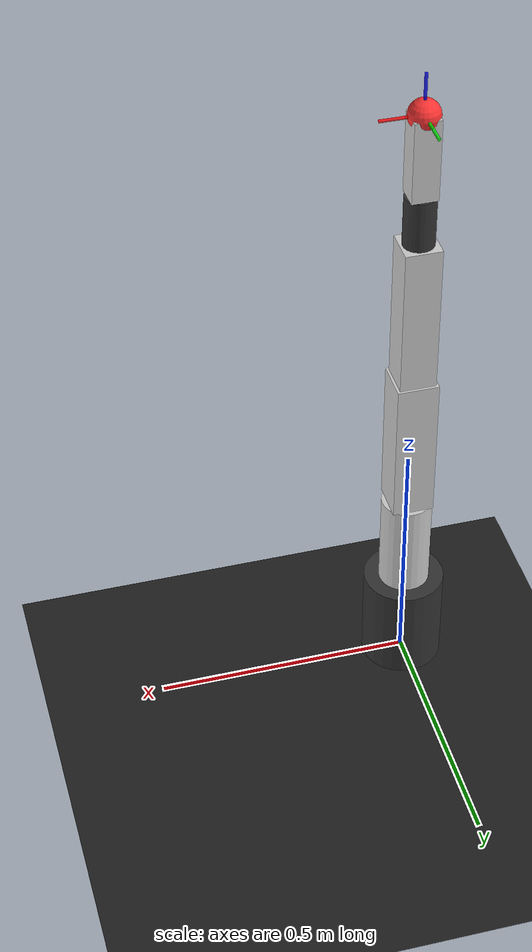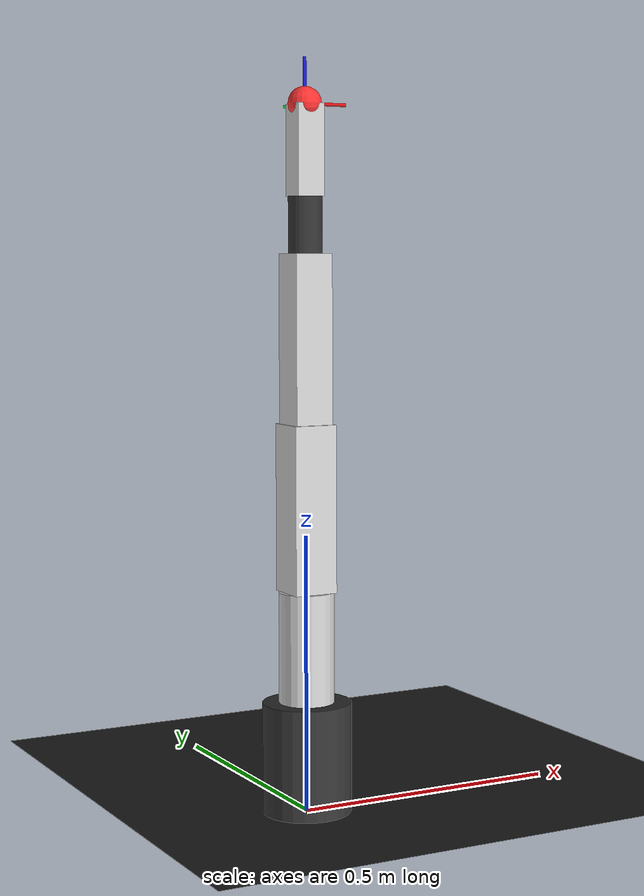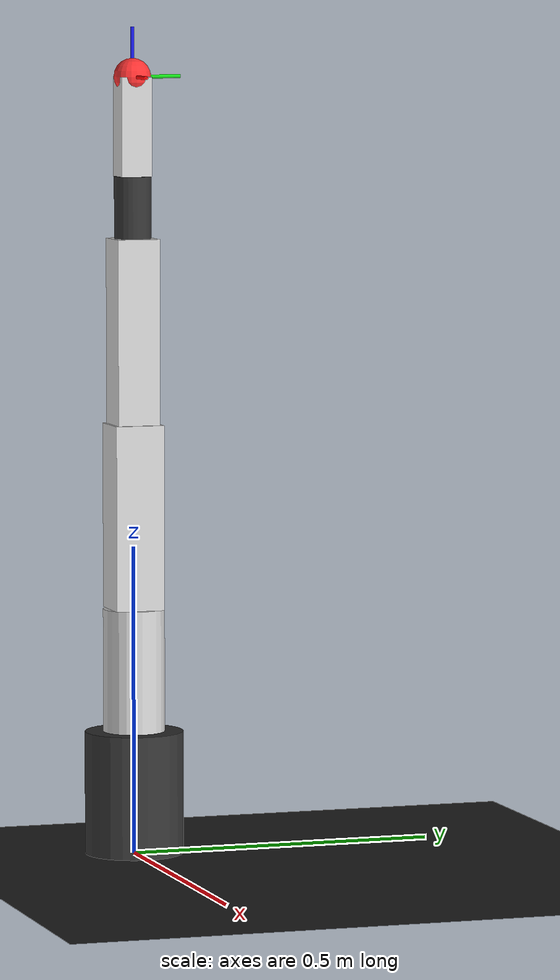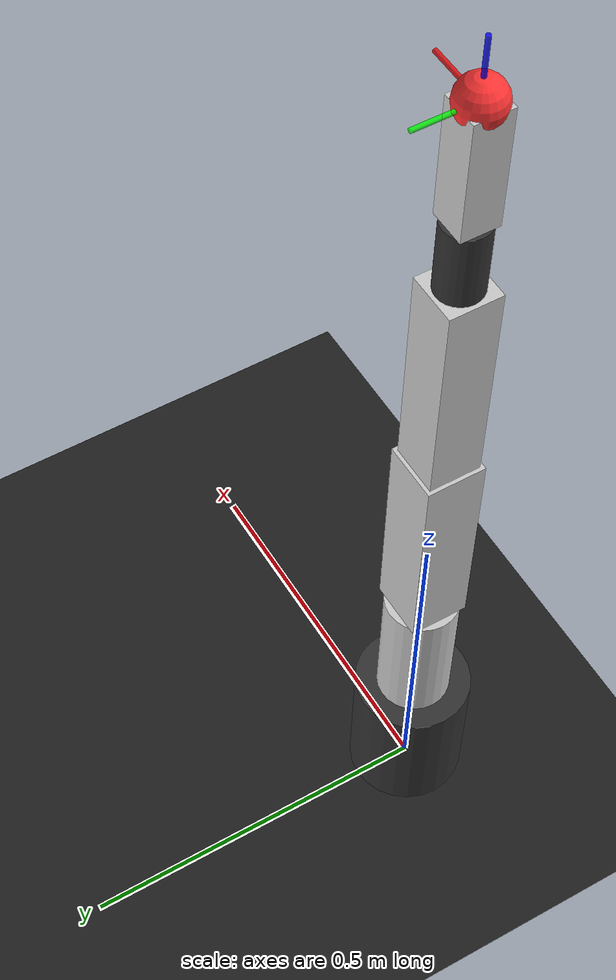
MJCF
<mujoco model="simple_teleop_arm">
    <compiler angle="degree" coordinate="local"/>
    <option timestep="0.002" integrator="RK4">
        <flag energy="enable"/>
    </option>

    <default>
        <joint damping="0.1" armature="0.01" limited="true"/>
        <geom condim="3" material="arm_material"/>
    </default>

    <asset>
        <texture type="skybox" builtin="gradient" rgb1="0.3 0.5 0.7" rgb2="0 0 0" width="512" height="512"/>
        <texture name="grid" type="2d" builtin="checker" rgb1="0.1 0.1 0.1" rgb2="0.15 0.15 0.15" width="512" height="512" mark="edge" markrgb="0.3 0.3 0.3"/>
        <material name="grid_material" texture="grid" texrepeat="2 2" texuniform="true"/>
        <material name="arm_material" rgba="0.8 0.8 0.8 1.0"/>
        <material name="joint_material" rgba="0.2 0.2 0.2 1.0"/>
    </asset>

    <worldbody>
        <light pos="0 0 3" dir="0 0 -1" directional="true" castshadow="true"/>
        <geom name="floor" type="plane" size="2 2 0.1" material="grid_material"/>

        <!-- Robot Base -->
        <body name="base" pos="0 0 0.1">
            <geom name="base_geom" type="cylinder" size="0.08 0.1" material="joint_material"/>

            <!-- Link 1: Shoulder Yaw -->
            <body name="link1" pos="0 0 0.1">
                <joint name="joint1" type="hinge" axis="0 0 1" range="-180 180"/>
                <geom name="link1_geom" type="cylinder" size="0.05 0.1" pos="0 0 0.1"/>

                <!-- Link 2: Shoulder Pitch -->
                <body name="link2" pos="0 0 0.2">
                    <joint name="joint2" type="hinge" axis="0 1 0" range="-90 90"/>
                    <geom name="link2_geom" type="box" size="0.04 0.04 0.15" pos="0 0 0.15"/>

                    <!-- Link 3: Elbow Pitch -->
                    <body name="link3" pos="0 0 0.3">
                        <joint name="joint3" type="hinge" axis="0 1 0" range="-150 150"/>
                        <geom name="link3_geom" type="box" size="0.035 0.035 0.15" pos="0 0 0.15"/>

                        <!-- Link 4: Wrist Roll -->
                        <body name="link4" pos="0 0 0.3">
                            <joint name="joint4" type="hinge" axis="0 0 1" range="-180 180"/>
                            <geom name="link4_geom" type="cylinder" size="0.03 0.05" pos="0 0 0.05" material="joint_material"/>

                            <!-- Link 5: Wrist Pitch -->
                            <body name="link5" pos="0 0 0.1">
                                <joint name="joint5" type="hinge" axis="0 1 0" range="-120 120"/>
                                <geom name="link5_geom" type="box" size="0.025 0.025 0.08" pos="0 0 0.08"/>

                                <!-- End Effector -->
                                <body name="end_effector" pos="0 0 0.16">
                                    <joint name="joint6" type="hinge" axis="0 0 1" range="-180 180"/>
                                    <geom name="ee_geom" type="sphere" size="0.03" rgba="1 0.2 0.2 1"/>
                                </body>
                            </body>
                        </body>
                    </body>
                </body>
            </body>
        </body>

        <!-- Mocap Target (Controlled by hand tracker or mock sinus path) -->
        <body name="mocap_target" mocap="true" pos="0.0 0.0 1.26">
            <geom name="mocap_geom" type="sphere" size="0.03" rgba="0 1 0 0.5" contype="0" conaffinity="0"/>
            <geom type="cylinder" size="0.003" fromto="0 0 0 0.08 0 0" rgba="1 0 0 0.8" contype="0" conaffinity="0"/>
            <geom type="cylinder" size="0.003" fromto="0 0 0 0 0.08 0" rgba="0 1 0 0.8" contype="0" conaffinity="0"/>
            <geom type="cylinder" size="0.003" fromto="0 0 0 0 0 0.08" rgba="0 0 1 0.8" contype="0" conaffinity="0"/>
        </body>
    </worldbody>

    <!-- Weld constraint to drag end_effector with mocap_target -->
    <equality>
        <weld name="teleop_weld" body1="end_effector" body2="mocap_target"/>
    </equality>
</mujoco>
